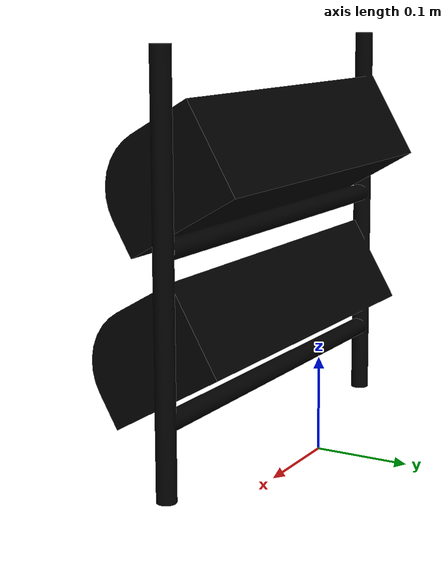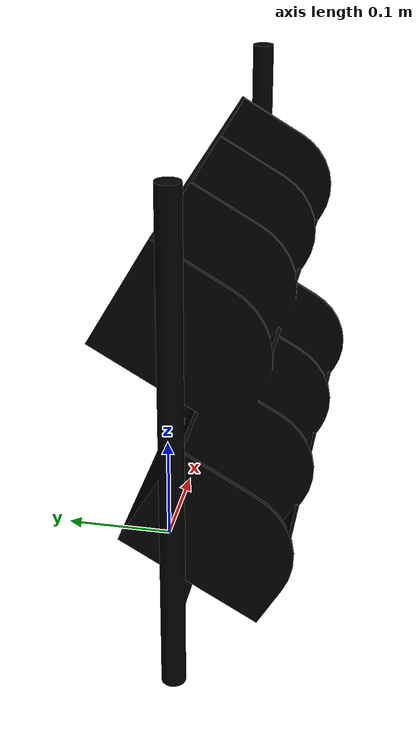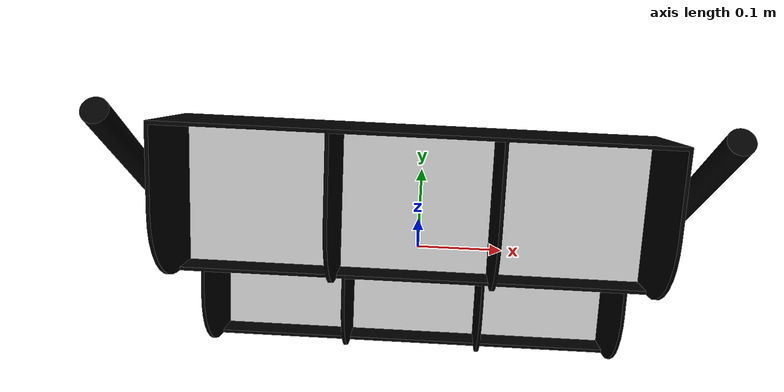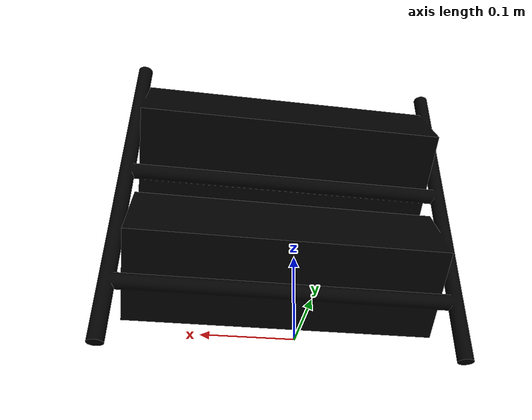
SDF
<?xml version="1.0" ?>
<sdf version="1.6">
  <model name="rack">
    <pose>0 0 0 0 0 0</pose>
    <static>true</static>
    <link name="body">
      <visual name="visual">
        <geometry>
          <mesh><uri>model://rack/media/rack.dae</uri></mesh>
        </geometry>
        <material>
        </material>
      </visual>
      <collision name="collision">
        <geometry>
          <mesh><uri>model://rack/media/rack.dae</uri></mesh>
        </geometry>
      </collision>
    </link>
  </model>
</sdf>
